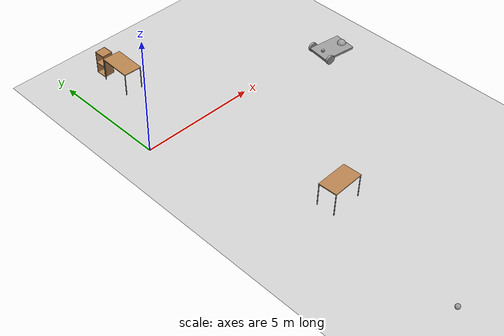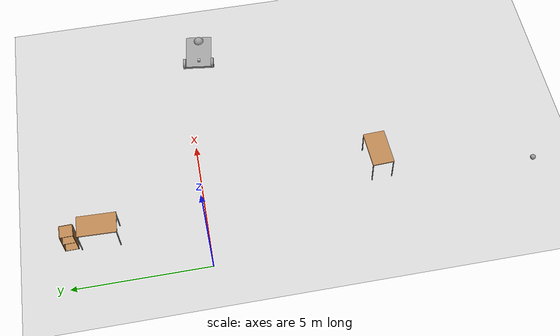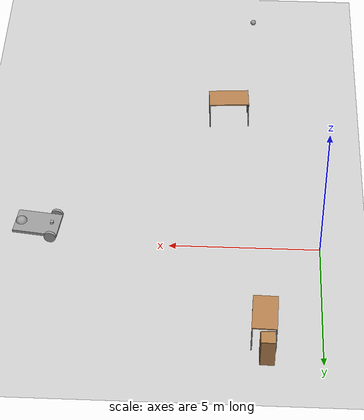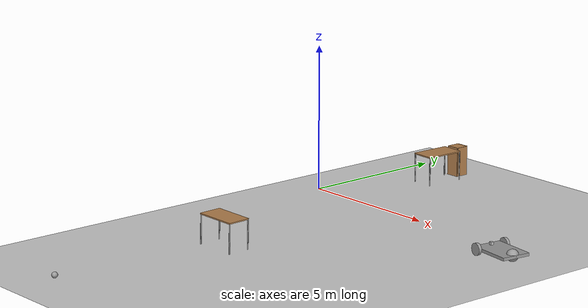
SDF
<sdf version="1.6">
 <world name="default">
  <model name="ground_plane">
   <static>1</static>
   <link name="link">
    <collision name="collision">
     <geometry><plane><normal>0 0 1</normal><size>100 100</size></plane></geometry>
     <surface><friction><ode><mu>100</mu><mu2>50</mu2></ode></friction></surface>
    </collision>
    <visual name="visual">
     <cast_shadows>0</cast_shadows>
     <geometry><plane><normal>0 0 1</normal><size>100 100</size></plane></geometry>
     <material>
      <script><uri>file://media/materials/scripts/gazebo.material</uri><name>Gazebo/Grey</name></script>
     </material>
    </visual>
   </link>
  </model>
  <model name="table_clone_clone_clone_clone_clone">
   <static>0</static>
   <link name="link">
    <collision name="surface">
     <pose>0 0 1 0 -0 0</pose>
     <geometry><box><size>1.5 0.8 0.03</size></box></geometry>
     <surface><friction><ode><mu>0.6</mu><mu2>0.6</mu2></ode></friction></surface>
    </collision>
    <visual name="visual1">
     <pose>0 0 1 0 -0 0</pose>
     <geometry><box><size>1.4 0.8 0.04</size></box></geometry>
     <material>
      <script><uri>file://media/materials/scripts/gazebo.material</uri><name>Gazebo/Wood</name></script>
     </material>
    </visual>
    <collision name="front_left_leg">
     <pose>0.68 0.38 0.5 0 -0 0</pose>
     <geometry><cylinder><radius>0.02</radius><length>1</length></cylinder></geometry>
    </collision>
    <visual name="front_left_leg">
     <pose>0.68 0.38 0.5 0 -0 0</pose>
     <geometry><cylinder><radius>0.02</radius><length>1</length></cylinder></geometry>
     <material>
      <script><uri>file://media/materials/scripts/gazebo.material</uri><name>Gazebo/Grey</name></script>
     </material>
    </visual>
    <collision name="front_right_leg">
     <pose>0.68 -0.38 0.5 0 -0 0</pose>
     <geometry><cylinder><radius>0.02</radius><length>1</length></cylinder></geometry>
    </collision>
    <visual name="front_right_leg">
     <pose>0.68 -0.38 0.5 0 -0 0</pose>
     <geometry><cylinder><radius>0.02</radius><length>1</length></cylinder></geometry>
     <material>
      <script><uri>file://media/materials/scripts/gazebo.material</uri><name>Gazebo/Grey</name></script>
     </material>
    </visual>
    <collision name="back_right_leg">
     <pose>-0.68 -0.38 0.5 0 -0 0</pose>
     <geometry><cylinder><radius>0.02</radius><length>1</length></cylinder></geometry>
    </collision>
    <visual name="back_right_leg">
     <pose>-0.68 -0.38 0.5 0 -0 0</pose>
     <geometry><cylinder><radius>0.02</radius><length>1</length></cylinder></geometry>
     <material>
      <script><uri>file://media/materials/scripts/gazebo.material</uri><name>Gazebo/Grey</name></script>
     </material>
    </visual>
    <collision name="back_left_leg">
     <pose>-0.68 0.38 0.5 0 -0 0</pose>
     <geometry><cylinder><radius>0.02</radius><length>1</length></cylinder></geometry>
    </collision>
    <visual name="back_left_leg">
     <pose>-0.68 0.38 0.5 0 -0 0</pose>
     <geometry><cylinder><radius>0.02</radius><length>1</length></cylinder></geometry>
     <material>
      <script><uri>file://media/materials/scripts/gazebo.material</uri><name>Gazebo/Grey</name></script>
     </material>
    </visual>
    <inertial>
     <inertia><ixx>1</ixx><ixy>0</ixy><ixz>0</ixz><iyy>1</iyy><iyz>0</iyz><izz>1</izz></inertia>
     <mass>1</mass>
    </inertial>
   </link>
   <pose>1.85244 3.80082 -2e-06 -1e-06 -0 1.53944</pose>
  </model>
  <model name="cabinet_clone_clone_clone_clone_0">
   <static>1</static>
   <link name="cabinet_bottom_plate">
    <inertial>
     <pose>0 0 -1 0 -0 0</pose>
     <inertia><ixx>2.05</ixx><ixy>0</ixy><ixz>0</ixz><iyy>2.05</iyy><iyz>0</iyz><izz>2.05</izz></inertia>
     <mass>25</mass>
    </inertial>
    <collision name="cabinet_bottom_plate_geom">
     <pose>0 0 0.01 0 -0 0</pose>
     <geometry><box><size>0.45 0.45 0.02</size></box></geometry>
    </collision>
    <visual name="cabinet_bottom_plate_geom_visual">
     <pose>0 0 0.01 0 -0 0</pose>
     <geometry><box><size>0.45 0.45 0.02</size></box></geometry>
     <material>
      <script><uri>file://media/materials/scripts/gazebo.material</uri><name>Gazebo/Wood</name></script>
     </material>
    </visual>
    <collision name="cabinet_bottom_plate_geom_cabinet_back_plate">
     <pose>0.235 0 0.51 0 -0 0</pose>
     <geometry><box><size>0.02 0.45 1.02</size></box></geometry>
    </collision>
    <visual name="cabinet_bottom_plate_geom_cabinet_back_plate_visual">
     <pose>0.235 0 0.51 0 -0 0</pose>
     <geometry><box><size>0.02 0.45 1.02</size></box></geometry>
     <material>
      <script><uri>file://media/materials/scripts/gazebo.material</uri><name>Gazebo/Wood</name></script>
     </material>
    </visual>
    <collision name="cabinet_bottom_plate_geom_cabinet_left_plate">
     <pose>0 0.235 0.51 0 -0 0</pose>
     <geometry><box><size>0.45 0.02 1.02</size></box></geometry>
    </collision>
    <visual name="cabinet_bottom_plate_geom_cabinet_left_plate_visual">
     <pose>0 0.235 0.51 0 -0 0</pose>
     <geometry><box><size>0.45 0.02 1.02</size></box></geometry>
     <material>
      <script><uri>file://media/materials/scripts/gazebo.material</uri><name>Gazebo/Wood</name></script>
     </material>
    </visual>
    <collision name="cabinet_bottom_plate_geom_cabinet_middle_plate">
     <pose>0 0 0.51 0 -0 0</pose>
     <geometry><box><size>0.45 0.45 0.02</size></box></geometry>
    </collision>
    <visual name="cabinet_bottom_plate_geom_cabinet_middle_plate_visual">
     <pose>0 0 0.51 0 -0 0</pose>
     <geometry><box><size>0.45 0.45 0.02</size></box></geometry>
     <material>
      <script><uri>file://media/materials/scripts/gazebo.material</uri><name>Gazebo/Wood</name></script>
     </material>
    </visual>
    <collision name="cabinet_bottom_plate_geom_cabinet_right_plate">
     <pose>0 -0.235 0.51 0 -0 0</pose>
     <geometry><box><size>0.45 0.02 1.02</size></box></geometry>
    </collision>
    <visual name="cabinet_bottom_plate_geom_cabinet_right_plate_visual">
     <pose>0 -0.235 0.51 0 -0 0</pose>
     <geometry><box><size>0.45 0.02 1.02</size></box></geometry>
     <material>
      <script><uri>file://media/materials/scripts/gazebo.material</uri><name>Gazebo/Wood</name></script>
     </material>
    </visual>
    <collision name="cabinet_bottom_plate_geom_cabinet_top_plate">
     <pose>0 0 1.01 0 -0 0</pose>
     <geometry><box><size>0.45 0.45 0.02</size></box></geometry>
    </collision>
    <visual name="cabinet_bottom_plate_geom_cabinet_top_plate_visual">
     <pose>0 0 1.01 0 -0 0</pose>
     <geometry><box><size>0.45 0.45 0.02</size></box></geometry>
     <material>
      <script><uri>file://media/materials/scripts/gazebo.material</uri><name>Gazebo/Wood</name></script>
     </material>
    </visual>
   </link>
   <pose>1.75909 4.84633 0.017437 -0.01053 -0.000628 0.017723</pose>
  </model>
  <model name="table_clone_0_clone_clone_0_clone_clone">
   <static>0</static>
   <link name="link">
    <collision name="surface">
     <pose>0 0 1 0 -0 0</pose>
     <geometry><box><size>1.5 0.8 0.03</size></box></geometry>
     <surface><friction><ode><mu>0.6</mu><mu2>0.6</mu2></ode></friction></surface>
    </collision>
    <visual name="visual1">
     <pose>0 0 1 0 -0 0</pose>
     <geometry><box><size>1.4 0.8 0.04</size></box></geometry>
     <material>
      <script><uri>file://media/materials/scripts/gazebo.material</uri><name>Gazebo/Wood</name></script>
     </material>
    </visual>
    <collision name="front_left_leg">
     <pose>0.68 0.38 0.5 0 -0 0</pose>
     <geometry><cylinder><radius>0.02</radius><length>1</length></cylinder></geometry>
    </collision>
    <visual name="front_left_leg">
     <pose>0.68 0.38 0.5 0 -0 0</pose>
     <geometry><cylinder><radius>0.02</radius><length>1</length></cylinder></geometry>
     <material>
      <script><uri>file://media/materials/scripts/gazebo.material</uri><name>Gazebo/Grey</name></script>
     </material>
    </visual>
    <collision name="front_right_leg">
     <pose>0.68 -0.38 0.5 0 -0 0</pose>
     <geometry><cylinder><radius>0.02</radius><length>1</length></cylinder></geometry>
    </collision>
    <visual name="front_right_leg">
     <pose>0.68 -0.38 0.5 0 -0 0</pose>
     <geometry><cylinder><radius>0.02</radius><length>1</length></cylinder></geometry>
     <material>
      <script><uri>file://media/materials/scripts/gazebo.material</uri><name>Gazebo/Grey</name></script>
     </material>
    </visual>
    <collision name="back_right_leg">
     <pose>-0.68 -0.38 0.5 0 -0 0</pose>
     <geometry><cylinder><radius>0.02</radius><length>1</length></cylinder></geometry>
    </collision>
    <visual name="back_right_leg">
     <pose>-0.68 -0.38 0.5 0 -0 0</pose>
     <geometry><cylinder><radius>0.02</radius><length>1</length></cylinder></geometry>
     <material>
      <script><uri>file://media/materials/scripts/gazebo.material</uri><name>Gazebo/Grey</name></script>
     </material>
    </visual>
    <collision name="back_left_leg">
     <pose>-0.68 0.38 0.5 0 -0 0</pose>
     <geometry><cylinder><radius>0.02</radius><length>1</length></cylinder></geometry>
    </collision>
    <visual name="back_left_leg">
     <pose>-0.68 0.38 0.5 0 -0 0</pose>
     <geometry><cylinder><radius>0.02</radius><length>1</length></cylinder></geometry>
     <material>
      <script><uri>file://media/materials/scripts/gazebo.material</uri><name>Gazebo/Grey</name></script>
     </material>
    </visual>
    <inertial>
     <inertia><ixx>1</ixx><ixy>0</ixy><ixz>0</ixz><iyy>1</iyy><iyz>0</iyz><izz>1</izz></inertia>
     <mass>1</mass>
    </inertial>
   </link>
   <pose>3.1045 -6.59553 0.0151 2e-06 -0.021583 -3.09729</pose>
  </model>
  <model name="chassis_robot_with_camera">
   <link name="link_0">
    <pose>0.207166 0.002354 -0.014274 0 -0 0</pose>
    <inertial>
     <mass>1</mass>
     <inertia>
      <ixx>0.166667</ixx>
      <ixy>0</ixy>
      <ixz>0</ixz>
      <iyy>0.166667</iyy>
      <iyz>0</iyz>
      <izz>0.166667</izz>
     </inertia>
    </inertial>
    <visual name="visual">
     <geometry><box><size>1.5 1 0.1</size></box></geometry>
     <material>
      <lighting>1</lighting>
      <script><uri>file://media/materials/scripts/gazebo.material</uri><name>Gazebo/Grey</name></script>
      <ambient>0.3 0.3 0.3 1</ambient>
      <diffuse>0.7 0.7 0.7 1</diffuse>
      <specular>0.01 0.01 0.01 1</specular>
      <emissive>0 0 0 1</emissive>
      <shader type="vertex"><normal_map>__default__</normal_map></shader>
     </material>
    </visual>
    <collision name="collision">
     <geometry><box><size>1.5 1 0.1</size></box></geometry>
     <surface>
      <friction>
       <ode><mu>1</mu><mu2>1</mu2><fdir1>0 0 0</fdir1><slip1>0</slip1><slip2>0</slip2></ode>
       <torsional>
        <coefficient>1</coefficient>
        <patch_radius>0</patch_radius>
        <surface_radius>0</surface_radius>
        <use_patch_radius>1</use_patch_radius>
        <ode><slip>0</slip></ode>
       </torsional>
      </friction>
      <bounce><restitution_coefficient>0</restitution_coefficient><threshold>1e+06</threshold></bounce>
      <contact>
       <collide_without_contact>0</collide_without_contact>
       <collide_without_contact_bitmask>1</collide_without_contact_bitmask>
       <collide_bitmask>1</collide_bitmask>
       <ode>
        <soft_cfm>0</soft_cfm>
        <soft_erp>0.2</soft_erp>
        <kp>1e+13</kp>
        <kd>1</kd>
        <max_vel>0.01</max_vel>
        <min_depth>0</min_depth>
       </ode>
       <bullet>
        <split_impulse>1</split_impulse>
        <split_impulse_penetration_threshold>-0.01</split_impulse_penetration_threshold>
        <soft_cfm>0</soft_cfm>
        <soft_erp>0.2</soft_erp>
        <kp>1e+13</kp>
        <kd>1</kd>
       </bullet>
      </contact>
     </surface>
    </collision>
   </link>
   <link name="link_1_clone_clone">
    <pose>-0.341329 -0.545673 -0.014219 1.5707 -0 0</pose>
    <inertial>
     <mass>1</mass>
     <inertia><ixx>0.145833</ixx><ixy>0</ixy><ixz>0</ixz><iyy>0.145833</iyy><iyz>0</iyz><izz>0.125</izz></inertia>
    </inertial>
    <visual name="visual">
     <geometry><cylinder><radius>0.2</radius><length>0.1</length></cylinder></geometry>
     <material>
      <lighting>1</lighting>
      <script><uri>file://media/materials/scripts/gazebo.material</uri><name>Gazebo/Grey</name></script>
      <ambient>0.3 0.3 0.3 1</ambient>
      <diffuse>0.7 0.7 0.7 1</diffuse>
      <specular>0.01 0.01 0.01 1</specular>
      <emissive>0 0 0 1</emissive>
      <shader type="vertex"><normal_map>__default__</normal_map></shader>
     </material>
    </visual>
    <collision name="collision">
     <geometry><cylinder><radius>0.2</radius><length>0.1</length></cylinder></geometry>
     <surface>
      <friction>
       <ode><mu>1</mu><mu2>1</mu2><fdir1>0 0 0</fdir1><slip1>0</slip1><slip2>0</slip2></ode>
       <torsional>
        <coefficient>1</coefficient>
        <patch_radius>0</patch_radius>
        <surface_radius>0</surface_radius>
        <use_patch_radius>1</use_patch_radius>
        <ode><slip>0</slip></ode>
       </torsional>
      </friction>
      <bounce><restitution_coefficient>0</restitution_coefficient><threshold>1e+06</threshold></bounce>
      <contact>
       <collide_without_contact>0</collide_without_contact>
       <collide_without_contact_bitmask>1</collide_without_contact_bitmask>
       <collide_bitmask>1</collide_bitmask>
       <ode>
        <soft_cfm>0</soft_cfm>
        <soft_erp>0.2</soft_erp>
        <kp>1e+13</kp>
        <kd>1</kd>
        <max_vel>0.01</max_vel>
        <min_depth>0</min_depth>
       </ode>
       <bullet>
        <split_impulse>1</split_impulse>
        <split_impulse_penetration_threshold>-0.01</split_impulse_penetration_threshold>
        <soft_cfm>0</soft_cfm>
        <soft_erp>0.2</soft_erp>
        <kp>1e+13</kp>
        <kd>1</kd>
       </bullet>
      </contact>
     </surface>
    </collision>
   </link>
   <link name="link_1_clone_clone_clone">
    <pose>-0.341329 0.554365 -0.014274 1.5707 -0 0</pose>
    <inertial>
     <mass>1</mass>
     <inertia><ixx>0.145833</ixx><ixy>0</ixy><ixz>0</ixz><iyy>0.145833</iyy><iyz>0</iyz><izz>0.125</izz></inertia>
    </inertial>
    <visual name="visual">
     <geometry><cylinder><radius>0.2</radius><length>0.1</length></cylinder></geometry>
     <material>
      <lighting>1</lighting>
      <script><uri>file://media/materials/scripts/gazebo.material</uri><name>Gazebo/Grey</name></script>
      <ambient>0.3 0.3 0.3 1</ambient>
      <diffuse>0.7 0.7 0.7 1</diffuse>
      <specular>0.01 0.01 0.01 1</specular>
      <emissive>0 0 0 1</emissive>
      <shader type="vertex"><normal_map>__default__</normal_map></shader>
     </material>
    </visual>
    <collision name="collision">
     <geometry><cylinder><radius>0.2</radius><length>0.1</length></cylinder></geometry>
     <surface>
      <friction>
       <ode><mu>1</mu><mu2>1</mu2><fdir1>0 0 0</fdir1><slip1>0</slip1><slip2>0</slip2></ode>
       <torsional>
        <coefficient>1</coefficient>
        <patch_radius>0</patch_radius>
        <surface_radius>0</surface_radius>
        <use_patch_radius>1</use_patch_radius>
        <ode><slip>0</slip></ode>
       </torsional>
      </friction>
      <bounce><restitution_coefficient>0</restitution_coefficient><threshold>1e+06</threshold></bounce>
      <contact>
       <collide_without_contact>0</collide_without_contact>
       <collide_without_contact_bitmask>1</collide_without_contact_bitmask>
       <collide_bitmask>1</collide_bitmask>
       <ode>
        <soft_cfm>0</soft_cfm>
        <soft_erp>0.2</soft_erp>
        <kp>1e+13</kp>
        <kd>1</kd>
        <max_vel>0.01</max_vel>
        <min_depth>0</min_depth>
       </ode>
       <bullet>
        <split_impulse>1</split_impulse>
        <split_impulse_penetration_threshold>-0.01</split_impulse_penetration_threshold>
        <soft_cfm>0</soft_cfm>
        <soft_erp>0.2</soft_erp>
        <kp>1e+13</kp>
        <kd>1</kd>
       </bullet>
      </contact>
     </surface>
    </collision>
   </link>
   <link name="link_2">
    <pose>0.758671 0.004346 -0.014274 0 -0 0</pose>
    <inertial>
     <mass>1</mass>
     <inertia><ixx>0.1</ixx><ixy>0</ixy><ixz>0</ixz><iyy>0.1</iyy><iyz>0</iyz><izz>0.1</izz></inertia>
    </inertial>
    <visual name="visual">
     <geometry><sphere><radius>0.2</radius></sphere></geometry>
     <material>
      <lighting>1</lighting>
      <script><uri>file://media/materials/scripts/gazebo.material</uri><name>Gazebo/Grey</name></script>
      <ambient>0.3 0.3 0.3 1</ambient>
      <diffuse>0.7 0.7 0.7 1</diffuse>
      <specular>0.01 0.01 0.01 1</specular>
      <emissive>0 0 0 1</emissive>
      <shader type="vertex"><normal_map>__default__</normal_map></shader>
     </material>
    </visual>
    <collision name="collision">
     <geometry><sphere><radius>0.2</radius></sphere></geometry>
     <surface>
      <friction>
       <ode><mu>1</mu><mu2>1</mu2><fdir1>0 0 0</fdir1><slip1>0</slip1><slip2>0</slip2></ode>
       <torsional>
        <coefficient>1</coefficient>
        <patch_radius>0</patch_radius>
        <surface_radius>0</surface_radius>
        <use_patch_radius>1</use_patch_radius>
        <ode><slip>0</slip></ode>
       </torsional>
      </friction>
      <bounce><restitution_coefficient>0</restitution_coefficient><threshold>1e+06</threshold></bounce>
      <contact>
       <collide_without_contact>0</collide_without_contact>
       <collide_without_contact_bitmask>1</collide_without_contact_bitmask>
       <collide_bitmask>1</collide_bitmask>
       <ode>
        <soft_cfm>0</soft_cfm>
        <soft_erp>0.2</soft_erp>
        <kp>1e+13</kp>
        <kd>1</kd>
        <max_vel>0.01</max_vel>
        <min_depth>0</min_depth>
       </ode>
       <bullet>
        <split_impulse>1</split_impulse>
        <split_impulse_penetration_threshold>-0.01</split_impulse_penetration_threshold>
        <soft_cfm>0</soft_cfm>
        <soft_erp>0.2</soft_erp>
        <kp>1e+13</kp>
        <kd>1</kd>
       </bullet>
      </contact>
     </surface>
    </collision>
   </link>
   <model name="depth_camera">
    <link name="link">
     <pose>0 0 0.05 0 -0 0</pose>
     <inertial>
      <mass>0.1</mass>
      <inertia>
       <ixx>0.000166667</ixx>
       <iyy>0.000166667</iyy>
       <izz>0.000166667</izz>
       <ixy>0</ixy>
       <ixz>0</ixz>
       <iyz>0</iyz>
      </inertia>
     </inertial>
     <collision name="collision"><geometry><box><size>0.1 0.1 0.1</size></box></geometry></collision>
     <visual name="visual"><geometry><box><size>0.1 0.1 0.1</size></box></geometry></visual>
     <sensor name="camera" type="depth">
      <camera name="__default__">
       <horizontal_fov>1.047</horizontal_fov>
       <image><width>320</width><height>240</height></image>
       <clip><near>0.1</near><far>100</far></clip>
      </camera>
      <always_on>1</always_on>
      <update_rate>30</update_rate>
      <visualize>1</visualize>
     </sensor>
    </link>
    <pose>-0.283178 -0.015391 0.05704 0 -0 0</pose>
   </model>
   <joint name="link_0_JOINT_3" type="revolute">
    <parent>link_0</parent>
    <child>link_1_clone_clone</child>
    <axis>
     <xyz>0 0 1</xyz>
     <use_parent_model_frame>0</use_parent_model_frame>
     <limit>
      <lower>-1.79769e+308</lower>
      <upper>1.79769e+308</upper>
      <effort>-1</effort>
      <velocity>-1</velocity>
     </limit>
     <dynamics>
      <spring_reference>0</spring_reference>
      <spring_stiffness>0</spring_stiffness>
      <damping>0</damping>
     </dynamics>
    </axis>
    <physics>
     <ode><limit><cfm>0</cfm><erp>0.2</erp></limit><suspension><cfm>0</cfm><erp>0.2</erp></suspension></ode>
    </physics>
   </joint>
   <joint name="link_0_JOINT_4" type="revolute">
    <parent>link_0</parent>
    <child>link_1_clone_clone_clone</child>
    <axis>
     <xyz>0 0 1</xyz>
     <use_parent_model_frame>0</use_parent_model_frame>
     <limit>
      <lower>-1.79769e+308</lower>
      <upper>1.79769e+308</upper>
      <effort>-1</effort>
      <velocity>-1</velocity>
     </limit>
     <dynamics>
      <spring_reference>0</spring_reference>
      <spring_stiffness>0</spring_stiffness>
      <damping>0</damping>
     </dynamics>
    </axis>
    <physics>
     <ode><limit><cfm>0</cfm><erp>0.2</erp></limit><suspension><cfm>0</cfm><erp>0.2</erp></suspension></ode>
    </physics>
   </joint>
   <joint name="link_0_JOINT_5" type="ball">
    <parent>link_0</parent>
    <child>link_2</child>
    <physics>
     <ode><limit><cfm>0</cfm><erp>0.2</erp></limit><suspension><cfm>0</cfm><erp>0.2</erp></suspension></ode>
    </physics>
   </joint>
   <joint name="link_0_JOINT_7" type="fixed">
    <parent>link_0</parent>
    <child>depth_camera::link</child>
    <physics>
     <ode><limit><cfm>0</cfm><erp>0.2</erp></limit><suspension><cfm>0</cfm><erp>0.2</erp></suspension></ode>
    </physics>
   </joint>
   <static>0</static>
   <plugin name="follower" filename="libFollowerPlugin.so"/>
   <pose>9.22334 -0.648633 0.214255 5.4e-05 -2.5e-05 -0.131326</pose>
  </model>
  <model name="white_ball">
   <link name="link_0">
    <pose>1e-06 -1e-06 -0 0 -0 0</pose>
    <inertial>
     <mass>1</mass>
     <inertia><ixx>0.1</ixx><ixy>0</ixy><ixz>0</ixz><iyy>0.1</iyy><iyz>0</iyz><izz>0.1</izz></inertia>
    </inertial>
    <visual name="visual">
     <geometry><sphere><radius>0.1</radius></sphere></geometry>
     <material>
      <lighting>0</lighting>
      <script><uri>file://media/materials/scripts/gazebo.material</uri><name>Gazebo/Grey</name></script>
      <ambient>1 1 1 1</ambient>
      <diffuse>1 1 1 1</diffuse>
      <specular>1 1 1 1</specular>
      <emissive>1 1 1 1</emissive>
      <shader type="vertex"><normal_map>__default__</normal_map></shader>
     </material>
    </visual>
    <collision name="collision">
     <geometry><sphere><radius>0.1</radius></sphere></geometry>
     <surface>
      <friction>
       <ode><mu>1</mu><mu2>1</mu2><fdir1>0 0 0</fdir1><slip1>0</slip1><slip2>0</slip2></ode>
       <torsional>
        <coefficient>1</coefficient>
        <patch_radius>0</patch_radius>
        <surface_radius>0</surface_radius>
        <use_patch_radius>1</use_patch_radius>
        <ode><slip>0</slip></ode>
       </torsional>
      </friction>
      <bounce><restitution_coefficient>0</restitution_coefficient><threshold>1e+06</threshold></bounce>
      <contact>
       <collide_without_contact>0</collide_without_contact>
       <collide_without_contact_bitmask>1</collide_without_contact_bitmask>
       <collide_bitmask>1</collide_bitmask>
       <ode>
        <soft_cfm>0</soft_cfm>
        <soft_erp>0.2</soft_erp>
        <kp>1e+13</kp>
        <kd>1</kd>
        <max_vel>0.01</max_vel>
        <min_depth>0</min_depth>
       </ode>
       <bullet>
        <split_impulse>1</split_impulse>
        <split_impulse_penetration_threshold>-0.01</split_impulse_penetration_threshold>
        <soft_cfm>0</soft_cfm>
        <soft_erp>0.2</soft_erp>
        <kp>1e+13</kp>
        <kd>1</kd>
       </bullet>
      </contact>
     </surface>
    </collision>
   </link>
   <static>0</static>
   <pose>2.23916 -12.4153 0.1 0 -0 0</pose>
  </model>
 </world>
</sdf>
